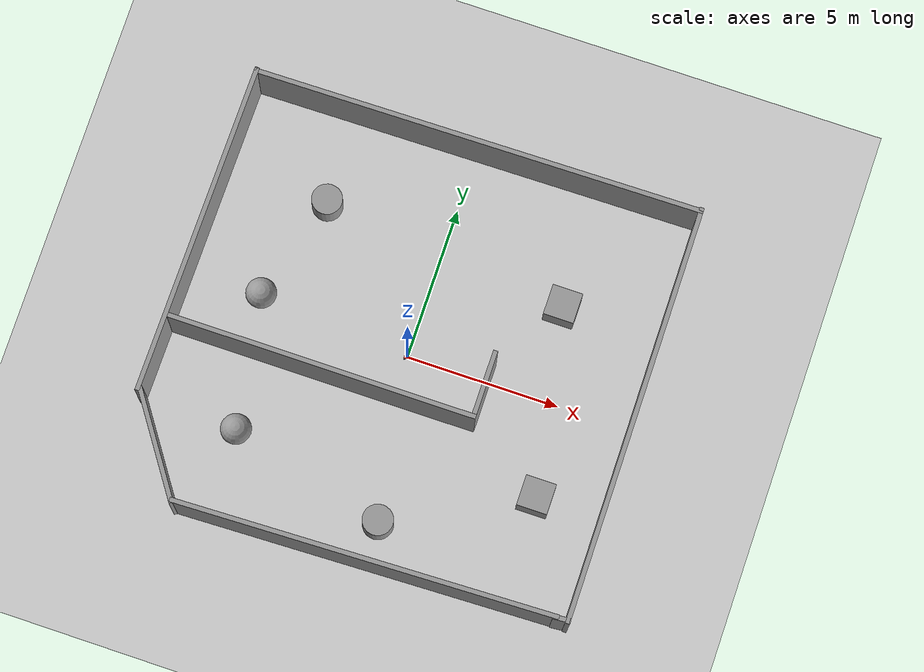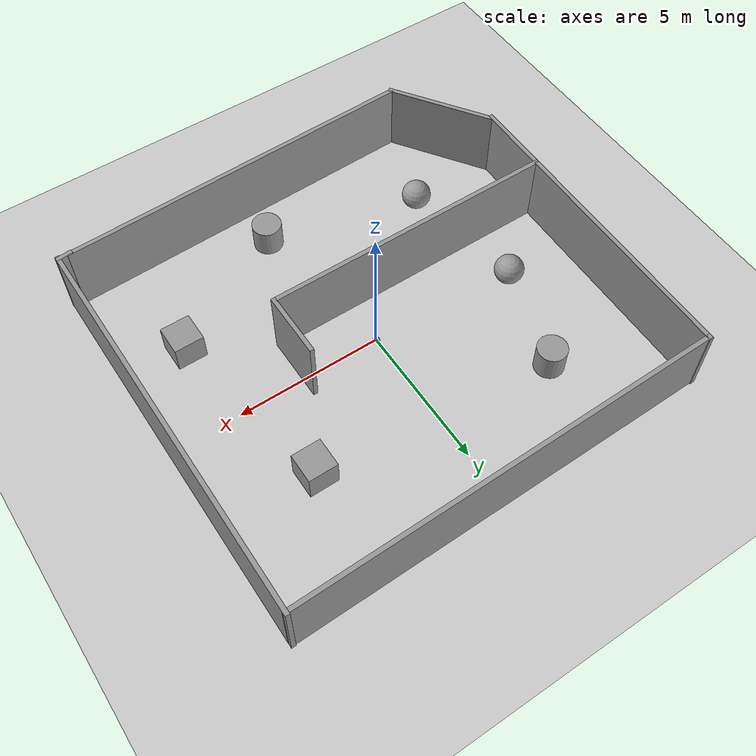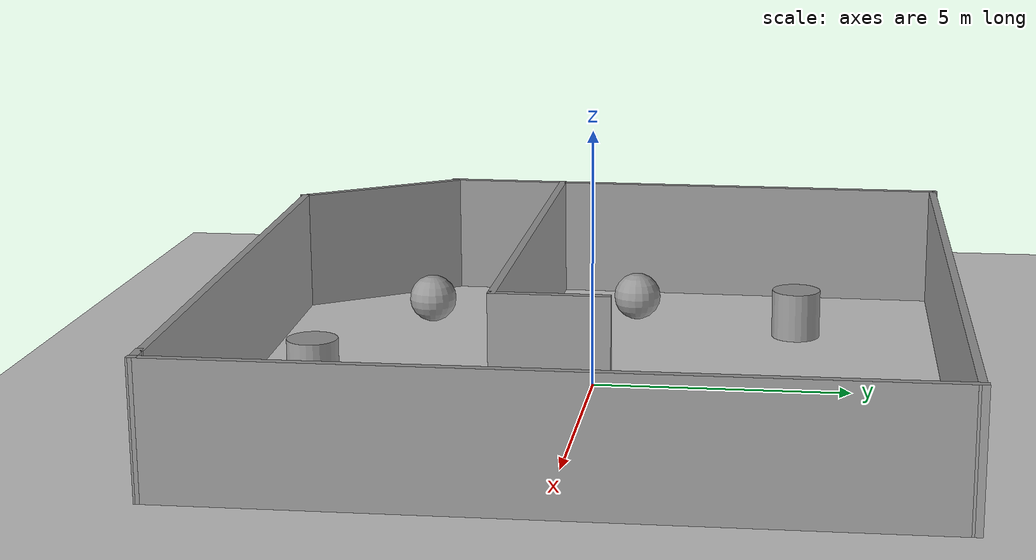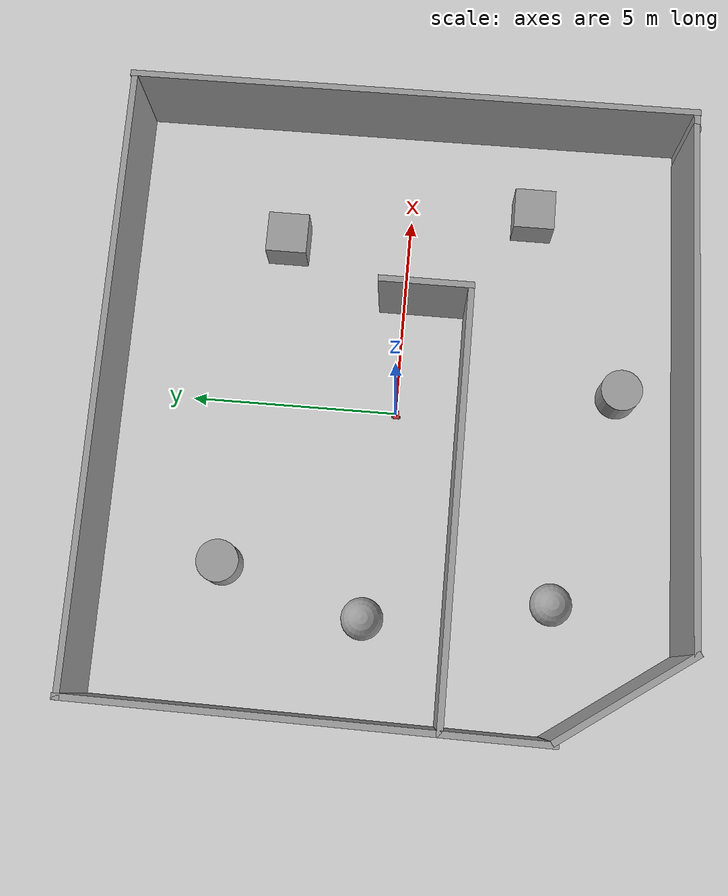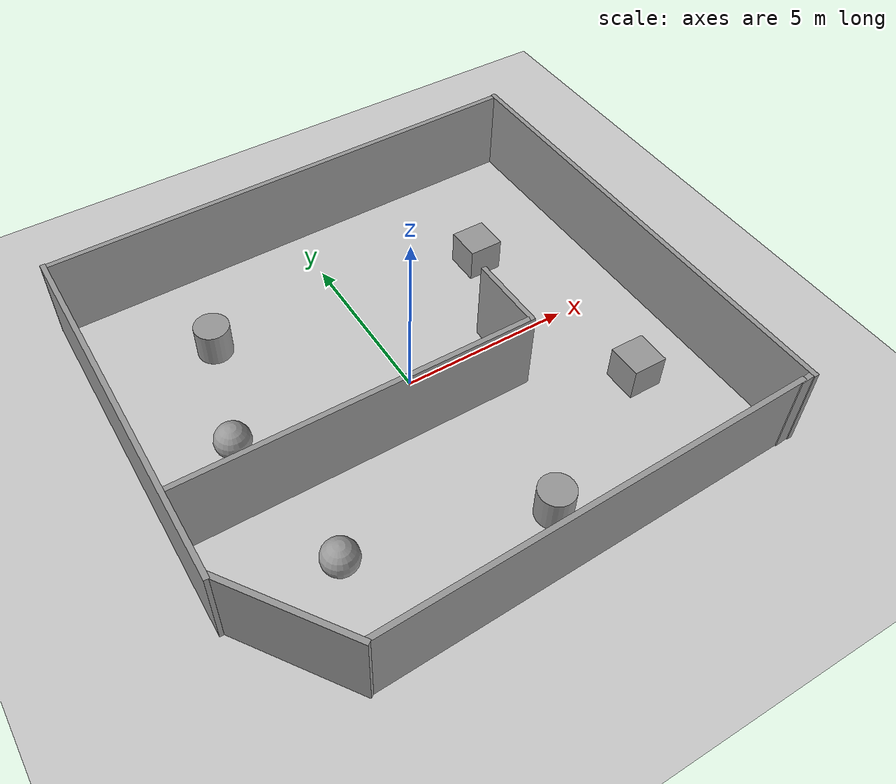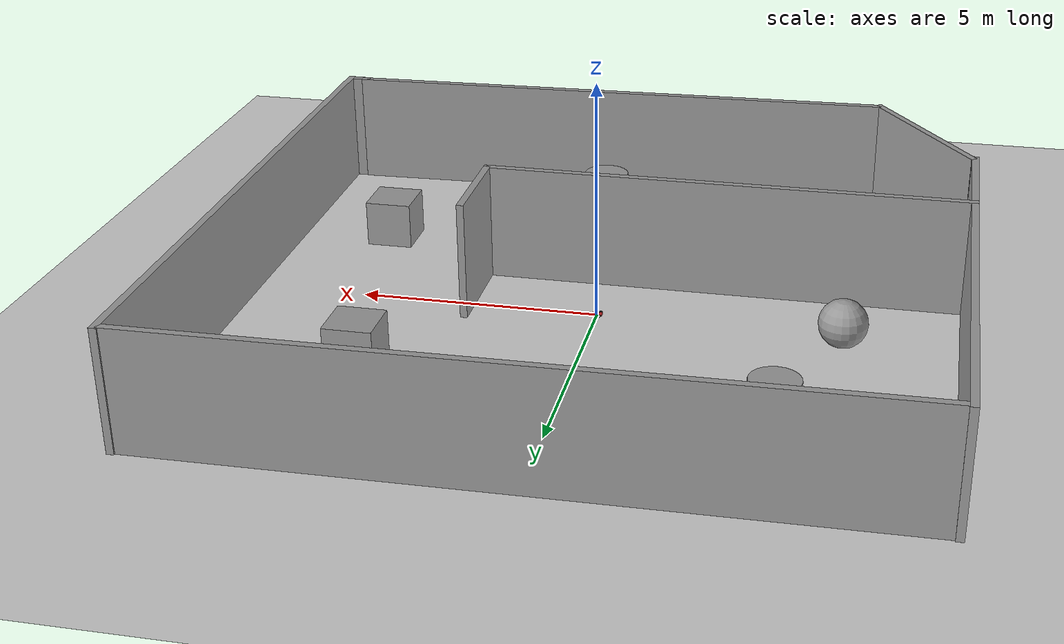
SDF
<sdf version="1.7">
 <world name="default">
  <light name="sun" type="directional">
   <pose>0 0 10 0 -0 0</pose>
   <diffuse>0.8 0.8 0.8 1</diffuse>
   <specular>0.2 0.2 0.2 1</specular>
   <attenuation>
    <range>1000</range>
    <constant>0.9</constant>
    <linear>0.01</linear>
    <quadratic>0.001</quadratic>
   </attenuation>
   <direction>-0.5 0.1 -0.9</direction>
   <spot><inner_angle>0</inner_angle><outer_angle>0</outer_angle><falloff>0</falloff></spot>
  </light>
  <model name="ground_plane">
   <static>1</static>
   <link name="link">
    <collision name="collision">
     <geometry><plane><normal>0 0 1</normal><size>100 100</size></plane></geometry>
     <surface>
      <contact><collide_bitmask>65535</collide_bitmask></contact>
      <friction><ode><mu>100</mu><mu2>50</mu2></ode></friction>
     </surface>
    </collision>
    <visual name="visual">
     <cast_shadows>0</cast_shadows>
     <geometry><plane><normal>0 0 1</normal><size>100 100</size></plane></geometry>
     <material>
      <script><uri>file://media/materials/scripts/gazebo.material</uri><name>Gazebo/Grey</name></script>
     </material>
    </visual>
   </link>
  </model>
  <gravity>0 0 -9.8</gravity>
  <magnetic_field>6e-06 2.3e-05 -4.2e-05</magnetic_field>
  <atmosphere type="adiabatic"/>
  <physics name="default_physics" default="0" type="ode">
   <max_step_size>0.001</max_step_size>
   <real_time_factor>1</real_time_factor>
   <real_time_update_rate>1000</real_time_update_rate>
  </physics>
  <scene><ambient>0.4 0.4 0.4 1</ambient><background>0.7 0.7 0.7 1</background><shadows>1</shadows></scene>
  <audio><device>default</device></audio>
  <spherical_coordinates>
   <surface_model>EARTH_WGS84</surface_model>
   <latitude_deg>0</latitude_deg>
   <longitude_deg>0</longitude_deg>
   <elevation>0</elevation>
   <heading_deg>0</heading_deg>
  </spherical_coordinates>
  <model name="rmp_world">
   <pose>-0.02455 -0.05887 0 0 -0 0</pose>
   <link name="Wall_0">
    <collision name="Wall_0_Collision">
     <geometry><box><size>3.80454 0.15 2.5</size></box></geometry>
     <pose>0 0 1.25 0 -0 0</pose>
    </collision>
    <visual name="Wall_0_Visual">
     <pose>0 0 1.25 0 -0 0</pose>
     <geometry><box><size>3.80454 0.15 2.5</size></box></geometry>
     <material>
      <script><uri>file://media/materials/scripts/gazebo.material</uri><name>Gazebo/Grey</name></script>
      <ambient>1 1 1 1</ambient>
     </material>
     <meta><layer>0</layer></meta>
    </visual>
    <pose>-6.34726 -5.45836 0 0 -0 -0.969264</pose>
   </link>
   <link name="Wall_1">
    <collision name="Wall_1_Collision">
     <geometry><box><size>12.5097 0.15 2.5</size></box></geometry>
     <pose>0 0 1.25 0 -0 0</pose>
    </collision>
    <visual name="Wall_1_Visual">
     <pose>0 0 1.25 0 -0 0</pose>
     <geometry><box><size>12.5097 0.15 2.5</size></box></geometry>
     <material>
      <script><uri>file://media/materials/scripts/gazebo.material</uri><name>Gazebo/Grey</name></script>
      <ambient>1 1 1 1</ambient>
     </material>
     <meta><layer>0</layer></meta>
    </visual>
    <pose>0.894494 -6.75076 0 0 -0 0.029704</pose>
   </link>
   <link name="Wall_3">
    <collision name="Wall_3_Collision">
     <geometry><box><size>0.563508 0.15 2.5</size></box></geometry>
     <pose>0 0 1.25 0 -0 0</pose>
    </collision>
    <visual name="Wall_3_Visual">
     <pose>0 0 1.25 0 -0 0</pose>
     <geometry><box><size>0.563508 0.15 2.5</size></box></geometry>
     <material>
      <script><uri>file://media/materials/scripts/gazebo.material</uri><name>Gazebo/Grey</name></script>
      <ambient>1 1 1 1</ambient>
     </material>
     <meta><layer>0</layer></meta>
    </visual>
    <pose>7.23676 -6.57816 0 0 -0 0.074045</pose>
   </link>
   <link name="Wall_4">
    <collision name="Wall_4_Collision">
     <geometry><box><size>13.7374 0.15 2.5</size></box></geometry>
     <pose>0 0 1.25 0 -0 0</pose>
    </collision>
    <visual name="Wall_4_Visual">
     <pose>0 0 1.25 0 -0 0</pose>
     <geometry><box><size>13.7374 0.15 2.5</size></box></geometry>
     <material>
      <script><uri>file://media/materials/scripts/gazebo.material</uri><name>Gazebo/Grey</name></script>
      <ambient>1 1 1 1</ambient>
     </material>
     <meta><layer>0</layer></meta>
    </visual>
    <pose>7.41236 0.200187 0 0 -0 1.5753</pose>
   </link>
   <link name="Wall_5">
    <collision name="Wall_5_Collision">
     <geometry><box><size>14.8268 0.15 2.5</size></box></geometry>
     <pose>0 0 1.25 0 -0 0</pose>
    </collision>
    <visual name="Wall_5_Visual">
     <pose>0 0 1.25 0 -0 0</pose>
     <geometry><box><size>14.8268 0.15 2.5</size></box></geometry>
     <material>
      <script><uri>file://media/materials/scripts/gazebo.material</uri><name>Gazebo/Grey</name></script>
      <ambient>1 1 1 1</ambient>
     </material>
     <meta><layer>0</layer></meta>
    </visual>
    <pose>0.043741 6.88676 0 0 -0 -3.13117</pose>
   </link>
   <link name="Wall_6">
    <collision name="Wall_6_Collision">
     <geometry><box><size>10.9641 0.15 2.5</size></box></geometry>
     <pose>0 0 1.25 0 -0 0</pose>
    </collision>
    <visual name="Wall_6_Visual">
     <pose>0 0 1.25 0 -0 0</pose>
     <geometry><box><size>10.9641 0.15 2.5</size></box></geometry>
     <material>
      <script><uri>file://media/materials/scripts/gazebo.material</uri><name>Gazebo/Grey</name></script>
      <ambient>1 1 1 1</ambient>
     </material>
     <meta><layer>0</layer></meta>
    </visual>
    <pose>-7.37076 1.43435 0 0 -0 -1.58494</pose>
   </link>
   <link name="Wall_8">
    <collision name="Wall_8_Collision">
     <geometry><box><size>10.25 0.15 2.5</size></box></geometry>
     <pose>0 0 1.25 0 -0 0</pose>
    </collision>
    <visual name="Wall_8_Visual">
     <pose>0 0 1.25 0 -0 0</pose>
     <geometry><box><size>10.25 0.15 2.5</size></box></geometry>
     <material>
      <script><uri>file://media/materials/scripts/gazebo.material</uri><name>Gazebo/Grey</name></script>
      <ambient>1 1 1 1</ambient>
     </material>
     <meta><layer>0</layer></meta>
    </visual>
    <pose>-2.35802 -1.48489 0 0 -0 0</pose>
   </link>
   <link name="Wall_9">
    <collision name="Wall_9_Collision">
     <geometry><box><size>2.25 0.15 2.5</size></box></geometry>
     <pose>0 0 1.25 0 -0 0</pose>
    </collision>
    <visual name="Wall_9_Visual">
     <pose>0 0 1.25 0 -0 0</pose>
     <geometry><box><size>2.25 0.15 2.5</size></box></geometry>
     <material>
      <script><uri>file://media/materials/scripts/gazebo.material</uri><name>Gazebo/Grey</name></script>
      <ambient>1 1 1 1</ambient>
     </material>
     <meta><layer>0</layer></meta>
    </visual>
    <pose>2.69198 -0.434888 0 0 -0 1.5708</pose>
   </link>
   <static>1</static>
  </model>
  <model name="rmp01_bot">
   <link name="base_link">
    <inertial>
     <pose>0.010759 -0 0.042322 0 -0 0</pose>
     <mass>1.2621</mass>
     <inertia>
      <ixx>0.00214581</ixx>
      <ixy>8.33378e-21</ixy>
      <ixz>0.000329519</ixz>
      <iyy>0.00378525</iyy>
      <iyz>-3.97237e-21</iyz>
      <izz>0.00468344</izz>
     </inertia>
    </inertial>
    <collision name="base_link_collision">
     <geometry>
      <mesh>
       <scale>0.001 0.001 0.001</scale>
       <uri>/home/kanish/catkin_ws/src/rmp01_bot_description/meshes/base_link.stl</uri>
      </mesh>
     </geometry>
     <surface><friction><ode><mu>0.2</mu><mu2>0.2</mu2></ode></friction></surface>
    </collision>
    <collision name="base_link_fixed_joint_lump__caster_1_collision_1">
     <geometry>
      <mesh>
       <scale>0.001 0.001 0.001</scale>
       <uri>/home/kanish/catkin_ws/src/rmp01_bot_description/meshes/caster_1.stl</uri>
      </mesh>
     </geometry>
     <surface><friction><ode><mu>0.2</mu><mu2>0.2</mu2></ode></friction></surface>
    </collision>
    <collision name="base_link_fixed_joint_lump__lidar_1_collision_2">
     <geometry>
      <mesh>
       <scale>0.001 0.001 0.001</scale>
       <uri>/home/kanish/catkin_ws/src/rmp01_bot_description/meshes/lidar_1.stl</uri>
      </mesh>
     </geometry>
     <surface><friction><ode><mu>0.2</mu><mu2>0.2</mu2></ode></friction></surface>
    </collision>
    <visual name="base_link_visual">
     <geometry>
      <mesh>
       <scale>0.001 0.001 0.001</scale>
       <uri>/home/kanish/catkin_ws/src/rmp01_bot_description/meshes/base_link.stl</uri>
      </mesh>
     </geometry>
     <material>
      <script><name>Gazebo/Red</name><uri>file://media/materials/scripts/gazebo.material</uri></script>
     </material>
    </visual>
    <visual name="base_link_fixed_joint_lump__caster_1_visual_1">
     <geometry>
      <mesh>
       <scale>0.001 0.001 0.001</scale>
       <uri>/home/kanish/catkin_ws/src/rmp01_bot_description/meshes/caster_1.stl</uri>
      </mesh>
     </geometry>
     <material>
      <script><name>Gazebo/Red</name><uri>file://media/materials/scripts/gazebo.material</uri></script>
     </material>
    </visual>
    <visual name="base_link_fixed_joint_lump__lidar_1_visual_2">
     <geometry>
      <mesh>
       <scale>0.001 0.001 0.001</scale>
       <uri>/home/kanish/catkin_ws/src/rmp01_bot_description/meshes/lidar_1.stl</uri>
      </mesh>
     </geometry>
     <material>
      <script><name>Gazebo/Red</name><uri>file://media/materials/scripts/gazebo.material</uri></script>
     </material>
    </visual>
    <sensor name="camera1" type="camera">
     <update_rate>30</update_rate>
     <camera name="head">
      <horizontal_fov>1.39626</horizontal_fov>
      <image><width>800</width><height>800</height><format>R8G8B8</format></image>
      <clip><near>0.02</near><far>300</far></clip>
      <noise><type>gaussian</type><mean>0</mean><stddev>0.007</stddev></noise>
     </camera>
     <plugin name="camera_controller" filename="libgazebo_ros_camera.so">
      <alwaysOn>1</alwaysOn>
      <updateRate>0.0</updateRate>
      <cameraName>rrbot/camera1</cameraName>
      <imageTopicName>image_raw</imageTopicName>
      <cameraInfoTopicName>camera_info</cameraInfoTopicName>
      <frameName>camera_link</frameName>
      <hackBaseline>0.07</hackBaseline>
      <distortionK1>0.0</distortionK1>
      <distortionK2>0.0</distortionK2>
      <distortionK3>0.0</distortionK3>
      <distortionT1>0.0</distortionT1>
      <distortionT2>0.0</distortionT2>
      <robotNamespace>/</robotNamespace>
     </plugin>
     <pose>0 0 0.1 0 -0 0</pose>
    </sensor>
    <self_collide>1</self_collide>
    <sensor name="head_hokuyo_sensor" type="ray">
     <visualize>0</visualize>
     <update_rate>40</update_rate>
     <ray>
      <scan>
       <horizontal>
        <samples>720</samples>
        <resolution>1</resolution>
        <min_angle>-3.14</min_angle>
        <max_angle>3.14</max_angle>
       </horizontal>
       <vertical><samples>1</samples><min_angle>0</min_angle><max_angle>0</max_angle></vertical>
      </scan>
      <range><min>0.1</min><max>30</max><resolution>0.01</resolution></range>
      <noise><type>gaussian</type><mean>0</mean><stddev>0.01</stddev></noise>
     </ray>
     <plugin name="gazebo_ros_head_hokuyo_controller" filename="libgazebo_ros_laser.so">
      <topicName>/scan</topicName>
      <frameName>lidar_1</frameName>
      <robotNamespace>/</robotNamespace>
     </plugin>
     <pose>0 0 0.0775 0 -0 0</pose>
    </sensor>
   </link>
   <joint name="left_wheel_joint" type="revolute">
    <pose relative_to="base_link">-0.055 0.095 0.035 0 -0 0</pose>
    <parent>base_link</parent>
    <child>left_wheel_1</child>
    <axis>
     <xyz>0 1 0</xyz>
     <limit><lower>-1e+16</lower><upper>1e+16</upper></limit>
     <dynamics><spring_reference>0</spring_reference><spring_stiffness>0</spring_stiffness></dynamics>
    </axis>
   </joint>
   <link name="left_wheel_1">
    <pose relative_to="left_wheel_joint">0 0 0 0 -0 0</pose>
    <inertial>
     <pose>-0 0.005 0 0 -0 0</pose>
     <mass>0.0255647</mass>
     <inertia><ixx>6e-06</ixx><ixy>0</ixy><ixz>0</ixz><iyy>1.2e-05</iyy><iyz>0</iyz><izz>6e-06</izz></inertia>
    </inertial>
    <collision name="left_wheel_1_collision">
     <pose>0.055 -0.095 -0.035 0 -0 0</pose>
     <geometry>
      <mesh>
       <scale>0.001 0.001 0.001</scale>
       <uri>/home/kanish/catkin_ws/src/rmp01_bot_description/meshes/left_wheel_1.stl</uri>
      </mesh>
     </geometry>
     <surface><friction><ode><mu>10</mu><mu2>10</mu2></ode></friction></surface>
    </collision>
    <visual name="left_wheel_1_visual">
     <pose>0.055 -0.095 -0.035 0 -0 0</pose>
     <geometry>
      <mesh>
       <scale>0.001 0.001 0.001</scale>
       <uri>/home/kanish/catkin_ws/src/rmp01_bot_description/meshes/left_wheel_1.stl</uri>
      </mesh>
     </geometry>
     <material>
      <script><name>Gazebo/Black</name><uri>file://media/materials/scripts/gazebo.material</uri></script>
     </material>
    </visual>
    <self_collide>1</self_collide>
   </link>
   <joint name="right_wheel_joint" type="revolute">
    <pose relative_to="base_link">-0.055 -0.095 0.035 0 -0 0</pose>
    <parent>base_link</parent>
    <child>right_wheel_1</child>
    <axis>
     <xyz>0 1 0</xyz>
     <limit><lower>-1e+16</lower><upper>1e+16</upper></limit>
     <dynamics><spring_reference>0</spring_reference><spring_stiffness>0</spring_stiffness></dynamics>
    </axis>
   </joint>
   <link name="right_wheel_1">
    <pose relative_to="right_wheel_joint">0 0 0 0 -0 0</pose>
    <inertial>
     <pose>-0 -0.005 0 0 -0 0</pose>
     <mass>0.0255647</mass>
     <inertia><ixx>6e-06</ixx><ixy>0</ixy><ixz>0</ixz><iyy>1.2e-05</iyy><iyz>0</iyz><izz>6e-06</izz></inertia>
    </inertial>
    <collision name="right_wheel_1_collision">
     <pose>0.055 0.095 -0.035 0 -0 0</pose>
     <geometry>
      <mesh>
       <scale>0.001 0.001 0.001</scale>
       <uri>/home/kanish/catkin_ws/src/rmp01_bot_description/meshes/right_wheel_1.stl</uri>
      </mesh>
     </geometry>
     <surface><friction><ode><mu>10</mu><mu2>10</mu2></ode></friction></surface>
    </collision>
    <visual name="right_wheel_1_visual">
     <pose>0.055 0.095 -0.035 0 -0 0</pose>
     <geometry>
      <mesh>
       <scale>0.001 0.001 0.001</scale>
       <uri>/home/kanish/catkin_ws/src/rmp01_bot_description/meshes/right_wheel_1.stl</uri>
      </mesh>
     </geometry>
     <material>
      <script><name>Gazebo/Black</name><uri>file://media/materials/scripts/gazebo.material</uri></script>
     </material>
    </visual>
    <self_collide>1</self_collide>
   </link>
   <plugin name="control" filename="libgazebo_ros_control.so"><robotNamespace>/</robotNamespace></plugin>
   <static>0</static>
   <plugin name="differential_drive_controller" filename="libgazebo_ros_diff_drive.so">
    <updateRate>10</updateRate>
    <leftJoint>left_wheel_joint</leftJoint>
    <rightJoint>right_wheel_joint</rightJoint>
    <wheelSeparation>0.20</wheelSeparation>
    <wheelDiameter>0.59</wheelDiameter>
    <wheelAcceleration>1.0</wheelAcceleration>
    <wheelTorque>20</wheelTorque>
    <commandTopic>cmd_vel</commandTopic>
    <odometryTopic>odom</odometryTopic>
    <odometryFrame>odom</odometryFrame>
    <robotBaseFrame>base_link</robotBaseFrame>
    <odometrySource>1</odometrySource>
    <publishWheelTF>1</publishWheelTF>
    <publishOdom>1</publishOdom>
    <publishWheelJointState>1</publishWheelJointState>
    <legacyMode>0</legacyMode>
    <robotNamespace>/</robotNamespace>
   </plugin>
   <pose>-0.014259 -0.000616 -0.005011 8.4e-05 -0.000181 0.003007</pose>
  </model>
  <model name="unit_cylinder">
   <pose>-4.00415 3.84353 0.499992 -3e-06 4e-06 0</pose>
   <link name="link">
    <inertial>
     <mass>1</mass>
     <inertia><ixx>0.145833</ixx><ixy>0</ixy><ixz>0</ixz><iyy>0.145833</iyy><iyz>0</iyz><izz>0.125</izz></inertia>
    </inertial>
    <collision name="collision">
     <geometry><cylinder><radius>0.5</radius><length>1</length></cylinder></geometry>
    </collision>
    <visual name="visual">
     <geometry><cylinder><radius>0.5</radius><length>1</length></cylinder></geometry>
     <material>
      <script><name>Gazebo/Grey</name><uri>file://media/materials/scripts/gazebo.material</uri></script>
     </material>
    </visual>
   </link>
  </model>
  <model name="unit_cylinder_0">
   <pose>0.819989 -5.36183 0.499992 -3e-06 -4e-06 -0</pose>
   <link name="link">
    <inertial>
     <mass>1</mass>
     <inertia><ixx>0.145833</ixx><ixy>0</ixy><ixz>0</ixz><iyy>0.145833</iyy><iyz>0</iyz><izz>0.125</izz></inertia>
    </inertial>
    <collision name="collision">
     <geometry><cylinder><radius>0.5</radius><length>1</length></cylinder></geometry>
    </collision>
    <visual name="visual">
     <geometry><cylinder><radius>0.5</radius><length>1</length></cylinder></geometry>
     <material>
      <script><name>Gazebo/Grey</name><uri>file://media/materials/scripts/gazebo.material</uri></script>
     </material>
    </visual>
   </link>
  </model>
  <model name="unit_box">
   <pose>4.15575 3.01948 0.499995 -1e-05 -0 -0</pose>
   <link name="link">
    <inertial>
     <mass>1</mass>
     <inertia>
      <ixx>0.166667</ixx>
      <ixy>0</ixy>
      <ixz>0</ixz>
      <iyy>0.166667</iyy>
      <iyz>0</iyz>
      <izz>0.166667</izz>
     </inertia>
    </inertial>
    <collision name="collision"><geometry><box><size>1 1 1</size></box></geometry></collision>
    <visual name="visual">
     <geometry><box><size>1 1 1</size></box></geometry>
     <material>
      <script><name>Gazebo/Grey</name><uri>file://media/materials/scripts/gazebo.material</uri></script>
     </material>
    </visual>
   </link>
  </model>
  <model name="unit_sphere">
   <pose>-4.36608 -3.99096 0.5 0 -0 0</pose>
   <link name="link">
    <inertial>
     <mass>1</mass>
     <inertia><ixx>0.1</ixx><ixy>0</ixy><ixz>0</ixz><iyy>0.1</iyy><iyz>0</iyz><izz>0.1</izz></inertia>
    </inertial>
    <collision name="collision"><geometry><sphere><radius>0.5</radius></sphere></geometry></collision>
    <visual name="visual">
     <geometry><sphere><radius>0.5</radius></sphere></geometry>
     <material>
      <script><name>Gazebo/Grey</name><uri>file://media/materials/scripts/gazebo.material</uri></script>
     </material>
    </visual>
   </link>
  </model>
  <model name="unit_sphere_0">
   <pose>-5.04307 0.392379 0.5 0 -0 0</pose>
   <link name="link">
    <inertial>
     <mass>1</mass>
     <inertia><ixx>0.1</ixx><ixy>0</ixy><ixz>0</ixz><iyy>0.1</iyy><iyz>0</iyz><izz>0.1</izz></inertia>
    </inertial>
    <collision name="collision"><geometry><sphere><radius>0.5</radius></sphere></geometry></collision>
    <visual name="visual">
     <geometry><sphere><radius>0.5</radius></sphere></geometry>
     <material>
      <script><name>Gazebo/Grey</name><uri>file://media/materials/scripts/gazebo.material</uri></script>
     </material>
    </visual>
   </link>
  </model>
  <model name="unit_box_0">
   <pose>5.26355 -3.0239 0.5 0 -0 0</pose>
   <link name="link">
    <inertial>
     <mass>1</mass>
     <inertia>
      <ixx>0.166667</ixx>
      <ixy>0</ixy>
      <ixz>0</ixz>
      <iyy>0.166667</iyy>
      <iyz>0</iyz>
      <izz>0.166667</izz>
     </inertia>
    </inertial>
    <collision name="collision"><geometry><box><size>1 1 1</size></box></geometry></collision>
    <visual name="visual">
     <geometry><box><size>1 1 1</size></box></geometry>
     <material>
      <script><name>Gazebo/Grey</name><uri>file://media/materials/scripts/gazebo.material</uri></script>
     </material>
    </visual>
   </link>
  </model>
 </world>
</sdf>
